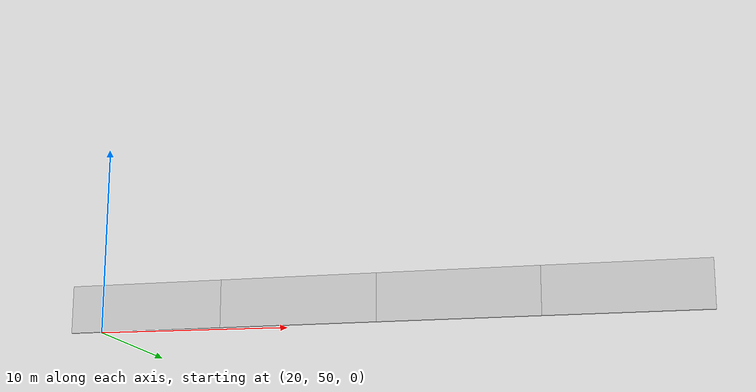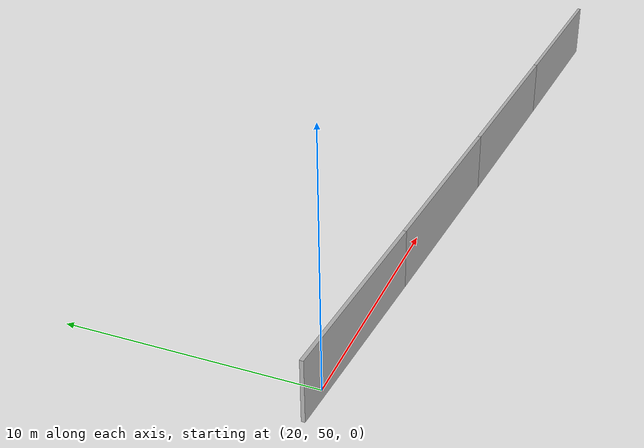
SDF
<?xml version="1.0" ?>
<sdf version="1.6">
  <model name="sps_3901">
    <pose frame="">0 0 0 0 -0 0</pose>
    <static>1</static>
    <self_collide>0</self_collide>
    <allow_auto_disable>0</allow_auto_disable>
    <link name="Wall8989">
      <kinematic>0</kinematic>
      <gravity>1</gravity>
      <self_collide>0</self_collide>
      <collision name="collision">
        <geometry>
          <box>
            <size>8.26185 0.15 2.5</size>
          </box>
        </geometry>
        <pose frame="">0 0 0 0 -0 0</pose>
      </collision>
      <visual name="visual">
        <geometry>
          <box>
            <size>8.26185 0.15 2.5</size>
          </box>
        </geometry>
        <pose frame="">0 0 0 0 -0 0</pose>
        <cast_shadows>1</cast_shadows>
        <transparency>0.0</transparency>
      </visual>
      <pose frame="">22.4823 49.686 1.25 0 0 -0.0672778</pose>
    </link>
    <link name="Wall8990">
      <kinematic>0</kinematic>
      <gravity>1</gravity>
      <self_collide>0</self_collide>
      <collision name="collision">
        <geometry>
          <box>
            <size>8.26161 0.15 2.5</size>
          </box>
        </geometry>
        <pose frame="">0 0 0 0 -0 0</pose>
      </collision>
      <visual name="visual">
        <geometry>
          <box>
            <size>8.26161 0.15 2.5</size>
          </box>
        </geometry>
        <pose frame="">0 0 0 0 -0 0</pose>
        <cast_shadows>1</cast_shadows>
        <transparency>0.0</transparency>
      </visual>
      <pose frame="">30.7259 49.1403 1.25 0 0 -0.0649253</pose>
    </link>
    <link name="Wall8991">
      <kinematic>0</kinematic>
      <gravity>1</gravity>
      <self_collide>0</self_collide>
      <collision name="collision">
        <geometry>
          <box>
            <size>8.26218 0.15 2.5</size>
          </box>
        </geometry>
        <pose frame="">0 0 0 0 -0 0</pose>
      </collision>
      <visual name="visual">
        <geometry>
          <box>
            <size>8.26218 0.15 2.5</size>
          </box>
        </geometry>
        <pose frame="">0 0 0 0 -0 0</pose>
        <cast_shadows>1</cast_shadows>
        <transparency>0.0</transparency>
      </visual>
      <pose frame="">38.9711 48.6141 1.25 0 0 -0.0625372</pose>
    </link>
    <link name="Wall8992">
      <kinematic>0</kinematic>
      <gravity>1</gravity>
      <self_collide>0</self_collide>
      <collision name="collision">
        <geometry>
          <box>
            <size>8.26172 0.15 2.5</size>
          </box>
        </geometry>
        <pose frame="">0 0 0 0 -0 0</pose>
      </collision>
      <visual name="visual">
        <geometry>
          <box>
            <size>8.26172 0.15 2.5</size>
          </box>
        </geometry>
        <pose frame="">0 0 0 0 -0 0</pose>
        <cast_shadows>1</cast_shadows>
        <transparency>0.0</transparency>
      </visual>
      <pose frame="">47.2175 48.1075 1.25 0 0 -0.0601722</pose>
    </link>
  </model>
</sdf>
